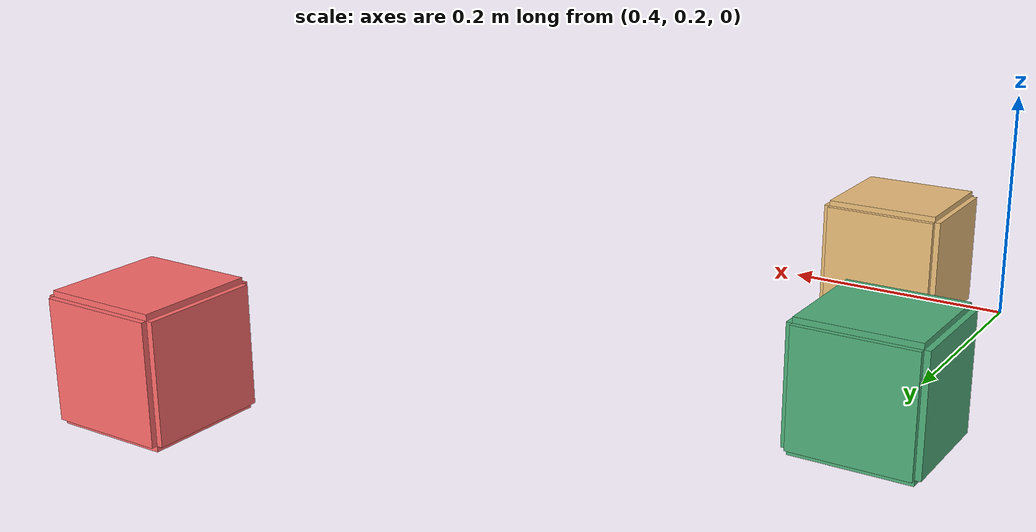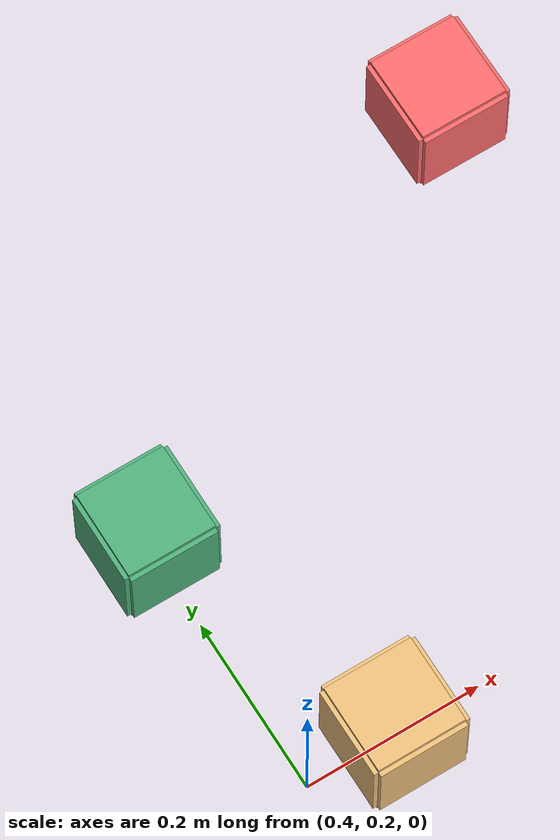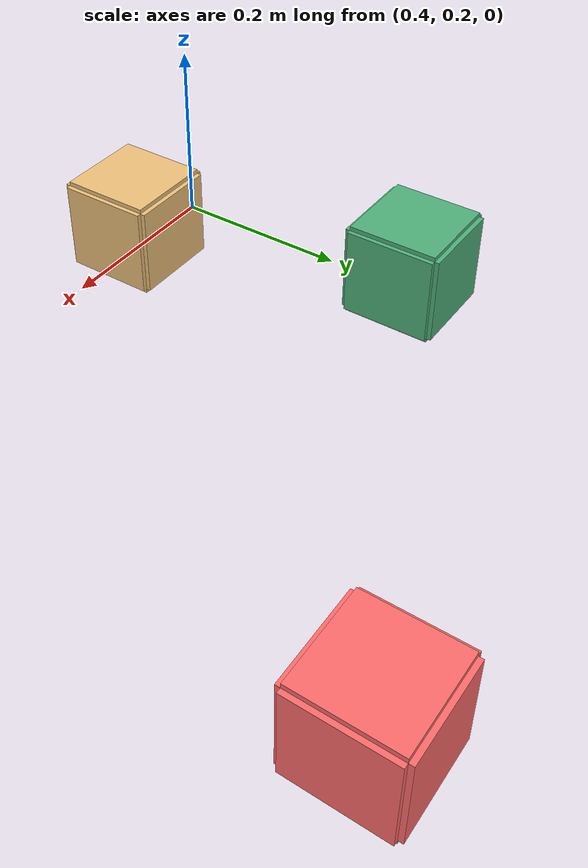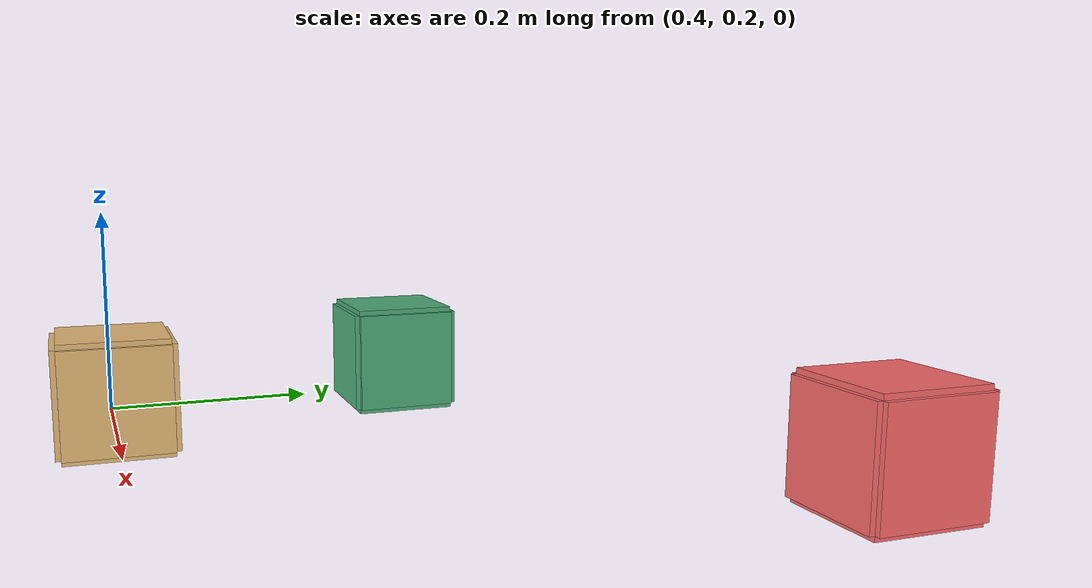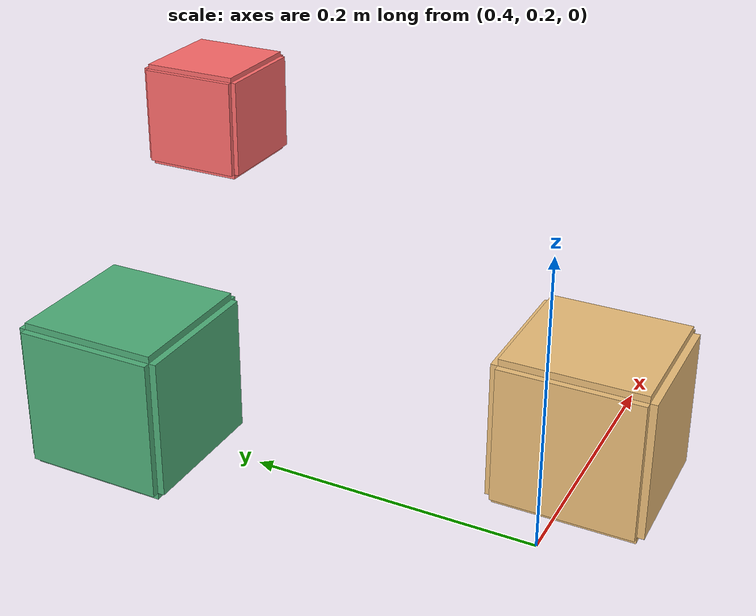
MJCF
<mujoco model="push_box">
    <worldbody>
        <body name="box_0" pos="0.9 0.75 0.0" quat="1 0 0 0">
            <site name="center_0" pos="0.0 0.0 0.04"  rgba='0 0 1 1' size='0.01'/>
            <geom pos="0 0 -0.01" size="0.05 0.05 0.005" rgba="1 0.42 0.42 1.0" type="box" mass="0.15" friction="0.3 0.001 0.0001" priority="1"/>
            <geom pos="0.05 0 0.04" size="0.005 0.05 0.05" rgba="1 0.42 0.42 1.0" type="box" mass="0.15" friction="0.3 0.001 0.0001" priority="1"/>
            <geom pos="0 0.05 0.04" size="0.05 0.005 0.05" rgba="1 0.42 0.42 1.0" type="box" mass="0.15" friction="0.3 0.001 0.0001" priority="1"/>
            <geom pos="-0.05 0 0.04" size="0.005 0.05 0.05" rgba="1 0.42 0.42 1.0" type="box" mass="0.15" friction="0.3 0.001 0.0001" priority="1"/>
            <geom pos="0 -0.05 0.04" size="0.05 0.005 0.05" rgba="1 0.42 0.42 1.0" type="box" mass="0.15" friction="0.3 0.001 0.0001" priority="1"/>
            <geom pos="0 0 0.09" size="0.05 0.05 0.005" rgba="1 0.42 0.42 1.0" type="box" mass="0.15" friction="0.3 0.001 0.0001" priority="1"/>
            <joint name="box_joint_0" type="free"/>
        </body>

        <body name="box_1" pos="0.4 0.5 0.0" quat="1 0 0 0">
            <site name="center_1" pos="0.0 0.0 0.04" rgba='0 0 1 1' size='0.01'/>
            <geom pos="0 0 -0.01" size="0.05 0.05 0.005" rgba="0.31 0.69 0.48 1.0" type="box" mass="0.15" friction="0.3 0.001 0.0001" priority="1"/>
            <geom pos="0.05 0 0.04" size="0.005 0.05 0.05" rgba="0.31 0.69 0.48 1.0" type="box" mass="0.15" friction="0.3 0.001 0.0001" priority="1"/>
            <geom pos="0 0.05 0.04" size="0.05 0.005 0.05" rgba="0.31 0.69 0.48 1.0" type="box" mass="0.15" friction="0.3 0.001 0.0001" priority="1"/>
            <geom pos="-0.05 0 0.04" size="0.005 0.05 0.05" rgba="0.31 0.69 0.48 1.0" type="box" mass="0.15" friction="0.3 0.001 0.0001" priority="1"/>
            <geom pos="0 -0.05 0.04" size="0.05 0.005 0.05" rgba="0.31 0.69 0.48 1.0" type="box" mass="0.15" friction="0.3 0.001 0.0001" priority="1"/>
            <geom pos="0 0 0.09" size="0.05 0.05 0.005" rgba="0.31 0.69 0.48 1.0" type="box" mass="0.15" friction="0.3 0.001 0.0001" priority="1"/>
            <joint name="box_joint_1" type="free"/>
        </body>

        <body name="box_2" pos="0.5 0.2 0.0" quat="1 0 0 0">
            <site name="center_2" pos="0.0 0.0 0.04" rgba='0 0 1 1' size='0.01'/>
            <geom pos="0 0 -0.01" size="0.05 0.05 0.005" rgba="0.93 0.75 0.48 1.0" type="box" mass="0.15" friction="0.3 0.001 0.0001" priority="1"/>
            <geom pos="0.05 0 0.04" size="0.005 0.05 0.05" rgba="0.93 0.75 0.48 1.0" type="box" mass="0.15" friction="0.3 0.001 0.0001" priority="1"/>
            <geom pos="0 0.05 0.04" size="0.05 0.005 0.05" rgba="0.93 0.75 0.48 1.0" type="box" mass="0.15" friction="0.3 0.001 0.0001" priority="1"/>
            <geom pos="-0.05 0 0.04" size="0.005 0.05 0.05" rgba="0.93 0.75 0.48 1.0" type="box" mass="0.15" friction="0.3 0.001 0.0001" priority="1"/>
            <geom pos="0 -0.05 0.04" size="0.05 0.005 0.05" rgba="0.93 0.75 0.48 1.0" type="box" mass="0.15" friction="0.3 0.001 0.0001" priority="1"/>
            <geom pos="0 0 0.09" size="0.05 0.05 0.005" rgba="0.93 0.75 0.48 1.0" type="box" mass="0.15" friction="0.3 0.001 0.0001" priority="1"/>
            <joint name="box_joint_2" type="free"/>
        </body>

        <body name="box_3" pos="0.9 0.75 0.0" quat="1 0 0 0">
            <site name="center_3" pos="0.0 0.0 0.04" rgba='0 0 1 1' size='0.01'/>
            <geom pos="0 0 -0.01" size="0.05 0.05 0.005" rgba="1 0.42 0.42 1.0" type="box" mass="0.15" friction="0.3 0.001 0.0001" priority="1"/>
            <geom pos="0.05 0 0.04" size="0.005 0.05 0.05" rgba="1 0.42 0.42 1.0" type="box" mass="0.15" friction="0.3 0.001 0.0001" priority="1"/>
            <geom pos="0 0.05 0.04" size="0.05 0.005 0.05" rgba="1 0.42 0.42 1.0" type="box" mass="0.15" friction="0.3 0.001 0.0001" priority="1"/>
            <geom pos="-0.05 0 0.04" size="0.005 0.05 0.05" rgba="1 0.42 0.42 1.0" type="box" mass="0.15" friction="0.3 0.001 0.0001" priority="1"/>
            <geom pos="0 -0.05 0.04" size="0.05 0.005 0.05" rgba="1 0.42 0.42 1.0" type="box" mass="0.15" friction="0.3 0.001 0.0001" priority="1"/>
            <geom pos="0 0 0.09" size="0.05 0.05 0.005" rgba="1 0.42 0.42 1.0" type="box" mass="0.15" friction="0.3 0.001 0.0001" priority="1"/>
            <joint name="box_joint_3" type="free"/>
        </body>

        <body name="box_4" pos="0.4 0.5 0.0" quat="1 0 0 0">
            <site name="center_4" pos="0.0 0.0 0.04" rgba='0 0 1 1' size='0.01'/>
            <geom pos="0 0 -0.01" size="0.05 0.05 0.005" rgba="0.31 0.69 0.48 1.0" type="box" mass="0.15" friction="0.3 0.001 0.0001" priority="1"/>
            <geom pos="0.05 0 0.04" size="0.005 0.05 0.05" rgba="0.31 0.69 0.48 1.0" type="box" mass="0.15" friction="0.3 0.001 0.0001" priority="1"/>
            <geom pos="0 0.05 0.04" size="0.05 0.005 0.05" rgba="0.31 0.69 0.48 1.0" type="box" mass="0.15" friction="0.3 0.001 0.0001" priority="1"/>
            <geom pos="-0.05 0 0.04" size="0.005 0.05 0.05" rgba="0.31 0.69 0.48 1.0" type="box" mass="0.15" friction="0.3 0.001 0.0001" priority="1"/>
            <geom pos="0 -0.05 0.04" size="0.05 0.005 0.05" rgba="0.31 0.69 0.48 1.0" type="box" mass="0.15" friction="0.3 0.001 0.0001" priority="1"/>
            <geom pos="0 0 0.09" size="0.05 0.05 0.005" rgba="0.31 0.69 0.48 1.0" type="box" mass="0.15" friction="0.3 0.001 0.0001" priority="1"/>
            <joint name="box_joint_4" type="free"/>
        </body>

        <body name="box_5" pos="0.5 0.2 0.0" quat="1 0 0 0">
            <site name="center_5" pos="0.0 0.0 0.04" rgba='0 0 1 1' size='0.01'/>
            <geom pos="0 0 -0.01" size="0.05 0.05 0.005" rgba="0.93 0.75 0.48 1.0" type="box" mass="0.15" friction="0.3 0.001 0.0001" priority="1"/>
            <geom pos="0.05 0 0.04" size="0.005 0.05 0.05" rgba="0.93 0.75 0.48 1.0" type="box" mass="0.15" friction="0.3 0.001 0.0001" priority="1"/>
            <geom pos="0 0.05 0.04" size="0.05 0.005 0.05" rgba="0.93 0.75 0.48 1.0" type="box" mass="0.15" friction="0.3 0.001 0.0001" priority="1"/>
            <geom pos="-0.05 0 0.04" size="0.005 0.05 0.05" rgba="0.93 0.75 0.48 1.0" type="box" mass="0.15" friction="0.3 0.001 0.0001" priority="1"/>
            <geom pos="0 -0.05 0.04" size="0.05 0.005 0.05" rgba="0.93 0.75 0.48 1.0" type="box" mass="0.15" friction="0.3 0.001 0.0001" priority="1"/>
            <geom pos="0 0 0.09" size="0.05 0.05 0.005" rgba="0.93 0.75 0.48 1.0" type="box" mass="0.15" friction="0.3 0.001 0.0001" priority="1"/>
            <joint name="box_joint_5" type="free"/>
        </body>

        <body name="box_6" pos="0.9 0.75 0.0" quat="1 0 0 0">
            <site name="center_6" pos="0.0 0.0 0.04" rgba='0 0 1 1' size='0.01'/>
            <geom pos="0 0 -0.01" size="0.05 0.05 0.005" rgba="1 0.42 0.42 1.0" type="box" mass="0.15" friction="0.3 0.001 0.0001" priority="1"/>
            <geom pos="0.05 0 0.04" size="0.005 0.05 0.05" rgba="1 0.42 0.42 1.0" type="box" mass="0.15" friction="0.3 0.001 0.0001" priority="1"/>
            <geom pos="0 0.05 0.04" size="0.05 0.005 0.05" rgba="1 0.42 0.42 1.0" type="box" mass="0.15" friction="0.3 0.001 0.0001" priority="1"/>
            <geom pos="-0.05 0 0.04" size="0.005 0.05 0.05" rgba="1 0.42 0.42 1.0" type="box" mass="0.15" friction="0.3 0.001 0.0001" priority="1"/>
            <geom pos="0 -0.05 0.04" size="0.05 0.005 0.05" rgba="1 0.42 0.42 1.0" type="box" mass="0.15" friction="0.3 0.001 0.0001" priority="1"/>
            <geom pos="0 0 0.09" size="0.05 0.05 0.005" rgba="1 0.42 0.42 1.0" type="box" mass="0.15" friction="0.3 0.001 0.0001" priority="1"/>
            <joint name="box_joint_6" type="free"/>
        </body>

        <body name="box_7" pos="0.4 0.5 0.0" quat="1 0 0 0">
            <site name="center_7" pos="0.0 0.0 0.04" rgba='0 0 1 1' size='0.01'/>
            <geom pos="0 0 -0.01" size="0.05 0.05 0.005" rgba="0.31 0.69 0.48 1.0" type="box" mass="0.15" friction="0.3 0.001 0.0001" priority="1"/>
            <geom pos="0.05 0 0.04" size="0.005 0.05 0.05" rgba="0.31 0.69 0.48 1.0" type="box" mass="0.15" friction="0.3 0.001 0.0001" priority="1"/>
            <geom pos="0 0.05 0.04" size="0.05 0.005 0.05" rgba="0.31 0.69 0.48 1.0" type="box" mass="0.15" friction="0.3 0.001 0.0001" priority="1"/>
            <geom pos="-0.05 0 0.04" size="0.005 0.05 0.05" rgba="0.31 0.69 0.48 1.0" type="box" mass="0.15" friction="0.3 0.001 0.0001" priority="1"/>
            <geom pos="0 -0.05 0.04" size="0.05 0.005 0.05" rgba="0.31 0.69 0.48 1.0" type="box" mass="0.15" friction="0.3 0.001 0.0001" priority="1"/>
            <geom pos="0 0 0.09" size="0.05 0.05 0.005" rgba="0.31 0.69 0.48 1.0" type="box" mass="0.15" friction="0.3 0.001 0.0001" priority="1"/>
            <joint name="box_joint_7" type="free"/>
        </body>

        <body name="box_8" pos="0.5 0.2 0.0" quat="1 0 0 0">
            <site name="center_8" pos="0.0 0.0 0.04" rgba='0 0 1 1' size='0.01'/>
            <geom pos="0 0 -0.01" size="0.05 0.05 0.005" rgba="0.93 0.75 0.48 1.0" type="box" mass="0.15" friction="0.3 0.001 0.0001" priority="1"/>
            <geom pos="0.05 0 0.04" size="0.005 0.05 0.05" rgba="0.93 0.75 0.48 1.0" type="box" mass="0.15" friction="0.3 0.001 0.0001" priority="1"/>
            <geom pos="0 0.05 0.04" size="0.05 0.005 0.05" rgba="0.93 0.75 0.48 1.0" type="box" mass="0.15" friction="0.3 0.001 0.0001" priority="1"/>
            <geom pos="-0.05 0 0.04" size="0.005 0.05 0.05" rgba="0.93 0.75 0.48 1.0" type="box" mass="0.15" friction="0.3 0.001 0.0001" priority="1"/>
            <geom pos="0 -0.05 0.04" size="0.05 0.005 0.05" rgba="0.93 0.75 0.48 1.0" type="box" mass="0.15" friction="0.3 0.001 0.0001" priority="1"/>
            <geom pos="0 0 0.09" size="0.05 0.05 0.005" rgba="0.93 0.75 0.48 1.0" type="box" mass="0.15" friction="0.3 0.001 0.0001" priority="1"/>
            <joint name="box_joint_8" type="free"/>
        </body>

        <body name="box_9" pos="0.9 0.75 0.0" quat="1 0 0 0">
            <site name="center_9" pos="0.0 0.0 0.04" rgba='0 0 1 1' size='0.01'/>
            <geom pos="0 0 -0.01" size="0.05 0.05 0.005" rgba="1 0.42 0.42 1.0" type="box" mass="0.15" friction="0.3 0.001 0.0001" priority="1"/>
            <geom pos="0.05 0 0.04" size="0.005 0.05 0.05" rgba="1 0.42 0.42 1.0" type="box" mass="0.15" friction="0.3 0.001 0.0001" priority="1"/>
            <geom pos="0 0.05 0.04" size="0.05 0.005 0.05" rgba="1 0.42 0.42 1.0" type="box" mass="0.15" friction="0.3 0.001 0.0001" priority="1"/>
            <geom pos="-0.05 0 0.04" size="0.005 0.05 0.05" rgba="1 0.42 0.42 1.0" type="box" mass="0.15" friction="0.3 0.001 0.0001" priority="1"/>
            <geom pos="0 -0.05 0.04" size="0.05 0.005 0.05" rgba="1 0.42 0.42 1.0" type="box" mass="0.15" friction="0.3 0.001 0.0001" priority="1"/>
            <geom pos="0 0 0.09" size="0.05 0.05 0.005" rgba="1 0.42 0.42 1.0" type="box" mass="0.15" friction="0.3 0.001 0.0001" priority="1"/>
            <joint name="box_joint_9" type="free"/>
        </body>

    </worldbody>
</mujoco>
